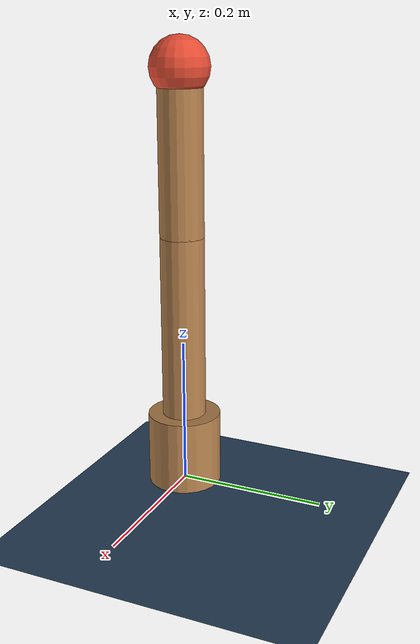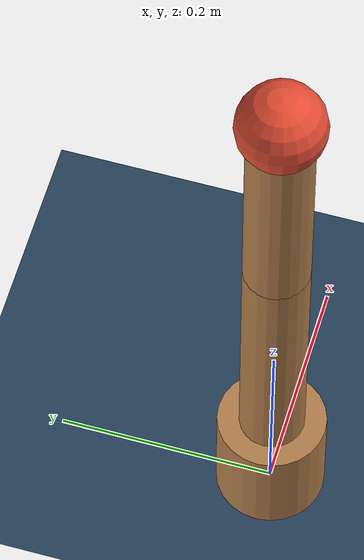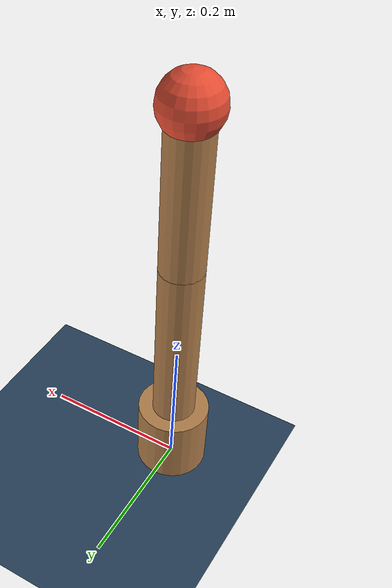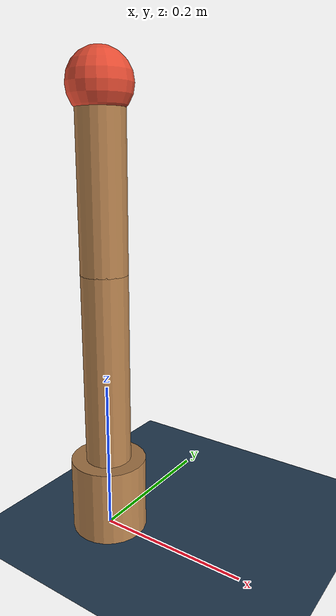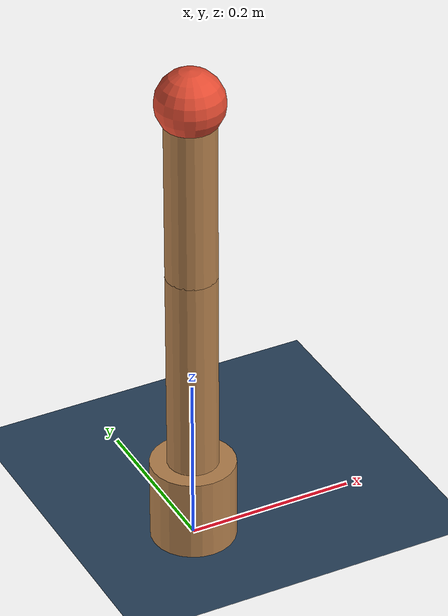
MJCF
<mujoco model="dummy_arm">
  <option timestep="0.005"/>

  <visual>
    <global offwidth="1280" offheight="960" elevation="-15" azimuth="120"/>
    <rgba haze="0.15 0.25 0.35 1"/>
  </visual>
  <statistic center="0 0 0.3" extent="1.0"/>

  <asset>
    <texture type="skybox" builtin="gradient" rgb1=".3 .5 .7" rgb2="0 0 0" width="32" height="512"/>
    <texture name="grid" type="2d" builtin="checker" width="512" height="512" rgb1=".1 .2 .3" rgb2=".2 .3 .4"/>
    <material name="grid" texture="grid" texrepeat="1 1" texuniform="true" reflectance=".2"/>
    <material name="link" rgba="0.7 0.5 0.3 1"/>
    <material name="tip"  rgba="0.9 0.3 0.2 1"/>
  </asset>

  <default>
    <joint type="hinge" axis="0 1 0" damping="0.5" armature="0.01"/>
    <motor ctrlrange="-1 1" ctrllimited="true" gear="8"/>
    <geom type="capsule" size="0.03" material="link"/>
  </default>

  <worldbody>
    <geom name="floor" size="0 0 .05" type="plane" material="grid" condim="3"/>
    <light name="top" pos="0 0 2" dir="0 0 -1" diffuse=".8 .8 .8"/>
    <body name="base" pos="0 0 0.05">
      <geom name="base" type="cylinder" size="0.05 0.05" material="link"/>
      <body name="upper" pos="0 0 0.05">
        <joint name="base_pitch"/>
        <geom name="upper" fromto="0 0 0 0 0 0.25"/>
        <body name="lower" pos="0 0 0.25">
          <joint name="elbow"/>
          <geom name="lower" fromto="0 0 0 0 0 0.22"/>
          <body name="tip" pos="0 0 0.22">
            <geom name="tip" type="sphere" size="0.04" material="tip"/>
          </body>
        </body>
      </body>
    </body>
  </worldbody>

  <actuator>
    <motor name="base_pitch" joint="base_pitch"/>
    <motor name="elbow" joint="elbow"/>
  </actuator>

  <keyframe>
    <key name="home" qpos="0.3 -1.2"/>
  </keyframe>
</mujoco>
